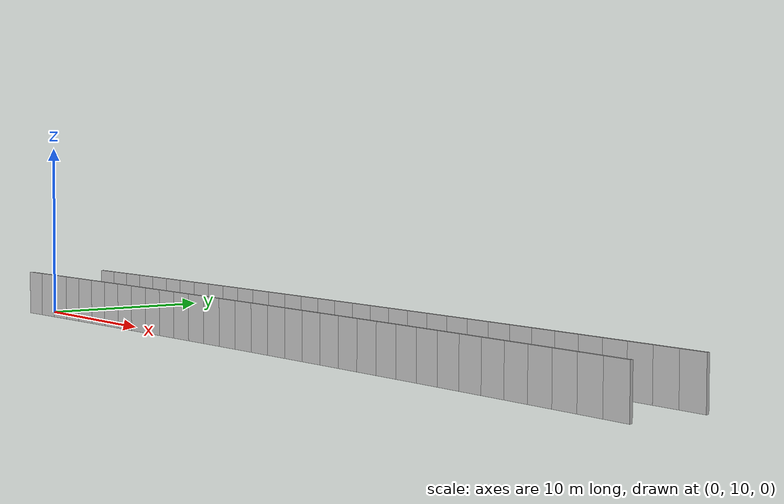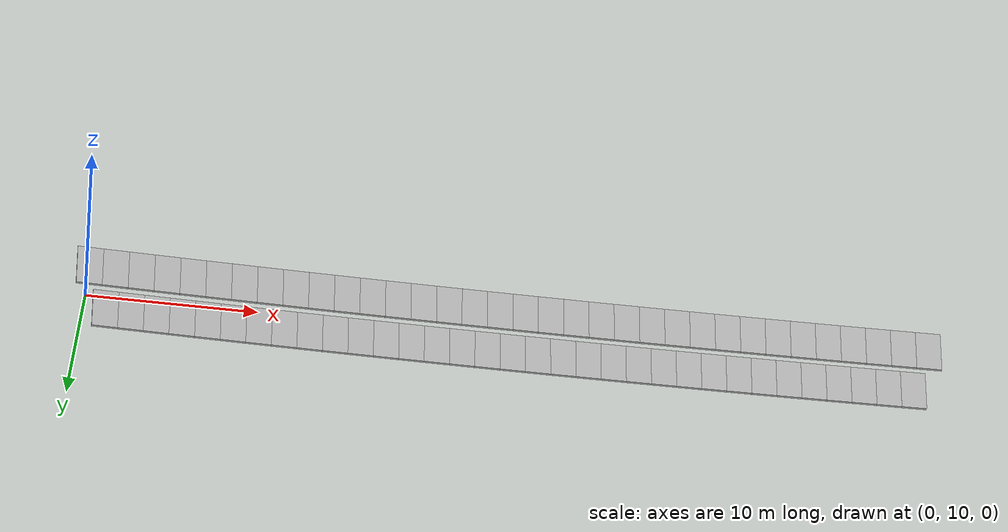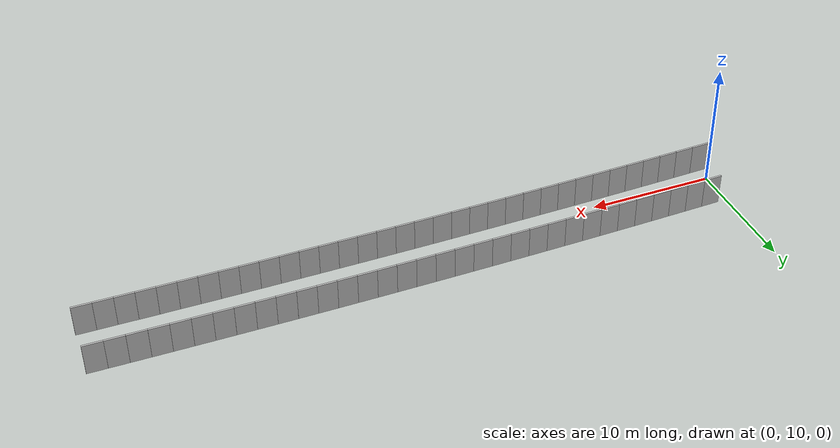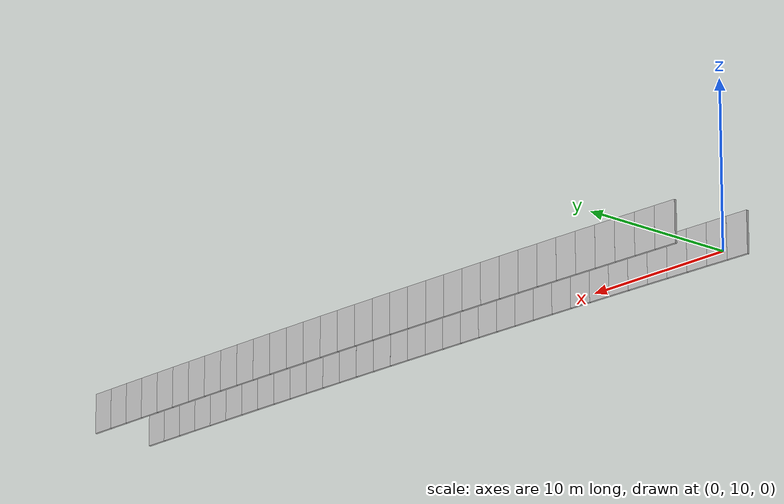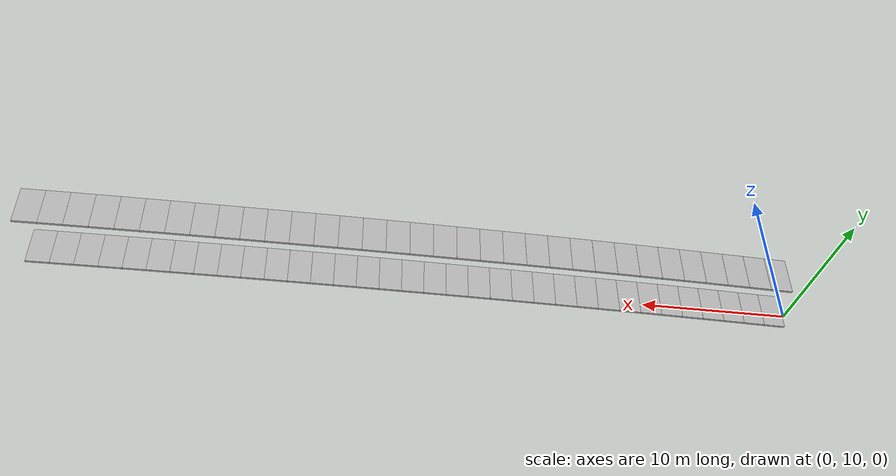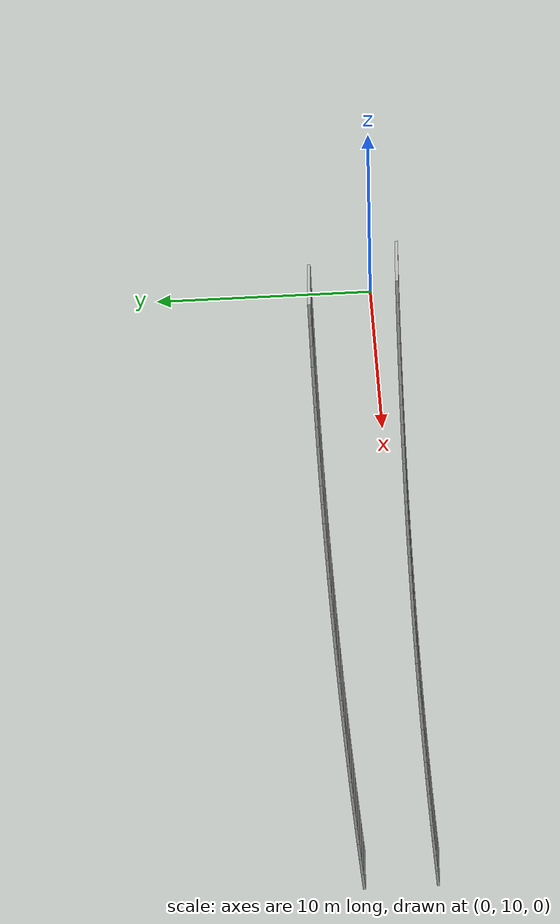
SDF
<?xml version="1.0" ?>
<sdf version="1.6">
  <model name="sps_2347">
    <pose frame="">0 0 0 0 -0 0</pose>
    <static>1</static>
    <self_collide>0</self_collide>
    <allow_auto_disable>0</allow_auto_disable>
    <link name="Wall2852">
      <kinematic>0</kinematic>
      <gravity>1</gravity>
      <self_collide>0</self_collide>
      <collision name="collision">
        <geometry>
          <box>
            <size>1.49664 0.15 2.5</size>
          </box>
        </geometry>
        <pose frame="">0 0 0 0 -0 0</pose>
      </collision>
      <visual name="visual">
        <geometry>
          <box>
            <size>1.49664 0.15 2.5</size>
          </box>
        </geometry>
        <pose frame="">0 0 0 0 -0 0</pose>
        <cast_shadows>1</cast_shadows>
        <transparency>0.0</transparency>
      </visual>
      <pose frame="">49.4662 9.1562 1.25 0 -0 3.12357</pose>
    </link>
    <link name="Wall2853">
      <kinematic>0</kinematic>
      <gravity>1</gravity>
      <self_collide>0</self_collide>
      <collision name="collision">
        <geometry>
          <box>
            <size>1.49636 0.15 2.5</size>
          </box>
        </geometry>
        <pose frame="">0 0 0 0 -0 0</pose>
      </collision>
      <visual name="visual">
        <geometry>
          <box>
            <size>1.49636 0.15 2.5</size>
          </box>
        </geometry>
        <pose frame="">0 0 0 0 -0 0</pose>
        <cast_shadows>1</cast_shadows>
        <transparency>0.0</transparency>
      </visual>
      <pose frame="">47.97 9.18208 1.25 0 -0 3.12503</pose>
    </link>
    <link name="Wall2854">
      <kinematic>0</kinematic>
      <gravity>1</gravity>
      <self_collide>0</self_collide>
      <collision name="collision">
        <geometry>
          <box>
            <size>1.49657 0.15 2.5</size>
          </box>
        </geometry>
        <pose frame="">0 0 0 0 -0 0</pose>
      </collision>
      <visual name="visual">
        <geometry>
          <box>
            <size>1.49657 0.15 2.5</size>
          </box>
        </geometry>
        <pose frame="">0 0 0 0 -0 0</pose>
        <cast_shadows>1</cast_shadows>
        <transparency>0.0</transparency>
      </visual>
      <pose frame="">46.4737 9.20567 1.25 0 -0 3.12662</pose>
    </link>
    <link name="Wall2855">
      <kinematic>0</kinematic>
      <gravity>1</gravity>
      <self_collide>0</self_collide>
      <collision name="collision">
        <geometry>
          <box>
            <size>1.49659 0.15 2.5</size>
          </box>
        </geometry>
        <pose frame="">0 0 0 0 -0 0</pose>
      </collision>
      <visual name="visual">
        <geometry>
          <box>
            <size>1.49659 0.15 2.5</size>
          </box>
        </geometry>
        <pose frame="">0 0 0 0 -0 0</pose>
        <cast_shadows>1</cast_shadows>
        <transparency>0.0</transparency>
      </visual>
      <pose frame="">44.9773 9.22679 1.25 0 -0 3.12834</pose>
    </link>
    <link name="Wall2856">
      <kinematic>0</kinematic>
      <gravity>1</gravity>
      <self_collide>0</self_collide>
      <collision name="collision">
        <geometry>
          <box>
            <size>1.4965 0.15 2.5</size>
          </box>
        </geometry>
        <pose frame="">0 0 0 0 -0 0</pose>
      </collision>
      <visual name="visual">
        <geometry>
          <box>
            <size>1.4965 0.15 2.5</size>
          </box>
        </geometry>
        <pose frame="">0 0 0 0 -0 0</pose>
        <cast_shadows>1</cast_shadows>
        <transparency>0.0</transparency>
      </visual>
      <pose frame="">43.4808 9.2455 1.25 0 -0 3.12985</pose>
    </link>
    <link name="Wall2857">
      <kinematic>0</kinematic>
      <gravity>1</gravity>
      <self_collide>0</self_collide>
      <collision name="collision">
        <geometry>
          <box>
            <size>1.49648 0.15 2.5</size>
          </box>
        </geometry>
        <pose frame="">0 0 0 0 -0 0</pose>
      </collision>
      <visual name="visual">
        <geometry>
          <box>
            <size>1.49648 0.15 2.5</size>
          </box>
        </geometry>
        <pose frame="">0 0 0 0 -0 0</pose>
        <cast_shadows>1</cast_shadows>
        <transparency>0.0</transparency>
      </visual>
      <pose frame="">41.9844 9.26189 1.25 0 -0 3.13144</pose>
    </link>
    <link name="Wall2858">
      <kinematic>0</kinematic>
      <gravity>1</gravity>
      <self_collide>0</self_collide>
      <collision name="collision">
        <geometry>
          <box>
            <size>1.49645 0.15 2.5</size>
          </box>
        </geometry>
        <pose frame="">0 0 0 0 -0 0</pose>
      </collision>
      <visual name="visual">
        <geometry>
          <box>
            <size>1.49645 0.15 2.5</size>
          </box>
        </geometry>
        <pose frame="">0 0 0 0 -0 0</pose>
        <cast_shadows>1</cast_shadows>
        <transparency>0.0</transparency>
      </visual>
      <pose frame="">40.488 9.27589 1.25 0 -0 3.13303</pose>
    </link>
    <link name="Wall2859">
      <kinematic>0</kinematic>
      <gravity>1</gravity>
      <self_collide>0</self_collide>
      <collision name="collision">
        <geometry>
          <box>
            <size>1.49643 0.15 2.5</size>
          </box>
        </geometry>
        <pose frame="">0 0 0 0 -0 0</pose>
      </collision>
      <visual name="visual">
        <geometry>
          <box>
            <size>1.49643 0.15 2.5</size>
          </box>
        </geometry>
        <pose frame="">0 0 0 0 -0 0</pose>
        <cast_shadows>1</cast_shadows>
        <transparency>0.0</transparency>
      </visual>
      <pose frame="">38.9916 9.28749 1.25 0 -0 3.13466</pose>
    </link>
    <link name="Wall2860">
      <kinematic>0</kinematic>
      <gravity>1</gravity>
      <self_collide>0</self_collide>
      <collision name="collision">
        <geometry>
          <box>
            <size>1.4966 0.15 2.5</size>
          </box>
        </geometry>
        <pose frame="">0 0 0 0 -0 0</pose>
      </collision>
      <visual name="visual">
        <geometry>
          <box>
            <size>1.4966 0.15 2.5</size>
          </box>
        </geometry>
        <pose frame="">0 0 0 0 -0 0</pose>
        <cast_shadows>1</cast_shadows>
        <transparency>0.0</transparency>
      </visual>
      <pose frame="">37.4951 9.2968 1.25 0 -0 3.13609</pose>
    </link>
    <link name="Wall2861">
      <kinematic>0</kinematic>
      <gravity>1</gravity>
      <self_collide>0</self_collide>
      <collision name="collision">
        <geometry>
          <box>
            <size>1.49641 0.15 2.5</size>
          </box>
        </geometry>
        <pose frame="">0 0 0 0 -0 0</pose>
      </collision>
      <visual name="visual">
        <geometry>
          <box>
            <size>1.49641 0.15 2.5</size>
          </box>
        </geometry>
        <pose frame="">0 0 0 0 -0 0</pose>
        <cast_shadows>1</cast_shadows>
        <transparency>0.0</transparency>
      </visual>
      <pose frame="">35.9986 9.30369 1.25 0 -0 3.13788</pose>
    </link>
    <link name="Wall2862">
      <kinematic>0</kinematic>
      <gravity>1</gravity>
      <self_collide>0</self_collide>
      <collision name="collision">
        <geometry>
          <box>
            <size>1.4964 0.15 2.5</size>
          </box>
        </geometry>
        <pose frame="">0 0 0 0 -0 0</pose>
      </collision>
      <visual name="visual">
        <geometry>
          <box>
            <size>1.4964 0.15 2.5</size>
          </box>
        </geometry>
        <pose frame="">0 0 0 0 -0 0</pose>
        <cast_shadows>1</cast_shadows>
        <transparency>0.0</transparency>
      </visual>
      <pose frame="">34.5023 9.30818 1.25 0 -0 3.13931</pose>
    </link>
    <link name="Wall2863">
      <kinematic>0</kinematic>
      <gravity>1</gravity>
      <self_collide>0</self_collide>
      <collision name="collision">
        <geometry>
          <box>
            <size>1.49658 0.15 2.5</size>
          </box>
        </geometry>
        <pose frame="">0 0 0 0 -0 0</pose>
      </collision>
      <visual name="visual">
        <geometry>
          <box>
            <size>1.49658 0.15 2.5</size>
          </box>
        </geometry>
        <pose frame="">0 0 0 0 -0 0</pose>
        <cast_shadows>1</cast_shadows>
        <transparency>0.0</transparency>
      </visual>
      <pose frame="">33.0058 9.31038 1.25 0 -0 3.14094</pose>
    </link>
    <link name="Wall2864">
      <kinematic>0</kinematic>
      <gravity>1</gravity>
      <self_collide>0</self_collide>
      <collision name="collision">
        <geometry>
          <box>
            <size>1.4964 0.15 2.5</size>
          </box>
        </geometry>
        <pose frame="">0 0 0 0 -0 0</pose>
      </collision>
      <visual name="visual">
        <geometry>
          <box>
            <size>1.4964 0.15 2.5</size>
          </box>
        </geometry>
        <pose frame="">0 0 0 0 -0 0</pose>
        <cast_shadows>1</cast_shadows>
        <transparency>0.0</transparency>
      </visual>
      <pose frame="">31.5093 9.31029 1.25 0 0 -3.14082</pose>
    </link>
    <link name="Wall2865">
      <kinematic>0</kinematic>
      <gravity>1</gravity>
      <self_collide>0</self_collide>
      <collision name="collision">
        <geometry>
          <box>
            <size>1.49665 0.15 2.5</size>
          </box>
        </geometry>
        <pose frame="">0 0 0 0 -0 0</pose>
      </collision>
      <visual name="visual">
        <geometry>
          <box>
            <size>1.49665 0.15 2.5</size>
          </box>
        </geometry>
        <pose frame="">0 0 0 0 -0 0</pose>
        <cast_shadows>1</cast_shadows>
        <transparency>0.0</transparency>
      </visual>
      <pose frame="">30.0127 9.30781 1.25 0 0 -3.13906</pose>
    </link>
    <link name="Wall2866">
      <kinematic>0</kinematic>
      <gravity>1</gravity>
      <self_collide>0</self_collide>
      <collision name="collision">
        <geometry>
          <box>
            <size>1.49659 0.15 2.5</size>
          </box>
        </geometry>
        <pose frame="">0 0 0 0 -0 0</pose>
      </collision>
      <visual name="visual">
        <geometry>
          <box>
            <size>1.49659 0.15 2.5</size>
          </box>
        </geometry>
        <pose frame="">0 0 0 0 -0 0</pose>
        <cast_shadows>1</cast_shadows>
        <transparency>0.0</transparency>
      </visual>
      <pose frame="">28.5161 9.30281 1.25 0 0 -3.13743</pose>
    </link>
    <link name="Wall2867">
      <kinematic>0</kinematic>
      <gravity>1</gravity>
      <self_collide>0</self_collide>
      <collision name="collision">
        <geometry>
          <box>
            <size>1.49642 0.15 2.5</size>
          </box>
        </geometry>
        <pose frame="">0 0 0 0 -0 0</pose>
      </collision>
      <visual name="visual">
        <geometry>
          <box>
            <size>1.49642 0.15 2.5</size>
          </box>
        </geometry>
        <pose frame="">0 0 0 0 -0 0</pose>
        <cast_shadows>1</cast_shadows>
        <transparency>0.0</transparency>
      </visual>
      <pose frame="">27.0196 9.29549 1.25 0 0 -3.13596</pose>
    </link>
    <link name="Wall2868">
      <kinematic>0</kinematic>
      <gravity>1</gravity>
      <self_collide>0</self_collide>
      <collision name="collision">
        <geometry>
          <box>
            <size>1.49644 0.15 2.5</size>
          </box>
        </geometry>
        <pose frame="">0 0 0 0 -0 0</pose>
      </collision>
      <visual name="visual">
        <geometry>
          <box>
            <size>1.49644 0.15 2.5</size>
          </box>
        </geometry>
        <pose frame="">0 0 0 0 -0 0</pose>
        <cast_shadows>1</cast_shadows>
        <transparency>0.0</transparency>
      </visual>
      <pose frame="">25.5232 9.28578 1.25 0 0 -3.13425</pose>
    </link>
    <link name="Wall2869">
      <kinematic>0</kinematic>
      <gravity>1</gravity>
      <self_collide>0</self_collide>
      <collision name="collision">
        <geometry>
          <box>
            <size>1.49664 0.15 2.5</size>
          </box>
        </geometry>
        <pose frame="">0 0 0 0 -0 0</pose>
      </collision>
      <visual name="visual">
        <geometry>
          <box>
            <size>1.49664 0.15 2.5</size>
          </box>
        </geometry>
        <pose frame="">0 0 0 0 -0 0</pose>
        <cast_shadows>1</cast_shadows>
        <transparency>0.0</transparency>
      </visual>
      <pose frame="">24.0268 9.2737 1.25 0 0 -3.13278</pose>
    </link>
    <link name="Wall2870">
      <kinematic>0</kinematic>
      <gravity>1</gravity>
      <self_collide>0</self_collide>
      <collision name="collision">
        <geometry>
          <box>
            <size>1.49648 0.15 2.5</size>
          </box>
        </geometry>
        <pose frame="">0 0 0 0 -0 0</pose>
      </collision>
      <visual name="visual">
        <geometry>
          <box>
            <size>1.49648 0.15 2.5</size>
          </box>
        </geometry>
        <pose frame="">0 0 0 0 -0 0</pose>
        <cast_shadows>1</cast_shadows>
        <transparency>0.0</transparency>
      </visual>
      <pose frame="">22.5303 9.25929 1.25 0 0 -3.13115</pose>
    </link>
    <link name="Wall2871">
      <kinematic>0</kinematic>
      <gravity>1</gravity>
      <self_collide>0</self_collide>
      <collision name="collision">
        <geometry>
          <box>
            <size>1.49651 0.15 2.5</size>
          </box>
        </geometry>
        <pose frame="">0 0 0 0 -0 0</pose>
      </collision>
      <visual name="visual">
        <geometry>
          <box>
            <size>1.49651 0.15 2.5</size>
          </box>
        </geometry>
        <pose frame="">0 0 0 0 -0 0</pose>
        <cast_shadows>1</cast_shadows>
        <transparency>0.0</transparency>
      </visual>
      <pose frame="">21.0339 9.24248 1.25 0 0 -3.12956</pose>
    </link>
    <link name="Wall2872">
      <kinematic>0</kinematic>
      <gravity>1</gravity>
      <self_collide>0</self_collide>
      <collision name="collision">
        <geometry>
          <box>
            <size>1.49635 0.15 2.5</size>
          </box>
        </geometry>
        <pose frame="">0 0 0 0 -0 0</pose>
      </collision>
      <visual name="visual">
        <geometry>
          <box>
            <size>1.49635 0.15 2.5</size>
          </box>
        </geometry>
        <pose frame="">0 0 0 0 -0 0</pose>
        <cast_shadows>1</cast_shadows>
        <transparency>0.0</transparency>
      </visual>
      <pose frame="">19.5376 9.22328 1.25 0 0 -3.12797</pose>
    </link>
    <link name="Wall2873">
      <kinematic>0</kinematic>
      <gravity>1</gravity>
      <self_collide>0</self_collide>
      <collision name="collision">
        <geometry>
          <box>
            <size>1.49657 0.15 2.5</size>
          </box>
        </geometry>
        <pose frame="">0 0 0 0 -0 0</pose>
      </collision>
      <visual name="visual">
        <geometry>
          <box>
            <size>1.49657 0.15 2.5</size>
          </box>
        </geometry>
        <pose frame="">0 0 0 0 -0 0</pose>
        <cast_shadows>1</cast_shadows>
        <transparency>0.0</transparency>
      </visual>
      <pose frame="">18.0413 9.2017 1.25 0 0 -3.12638</pose>
    </link>
    <link name="Wall2874">
      <kinematic>0</kinematic>
      <gravity>1</gravity>
      <self_collide>0</self_collide>
      <collision name="collision">
        <geometry>
          <box>
            <size>1.49661 0.15 2.5</size>
          </box>
        </geometry>
        <pose frame="">0 0 0 0 -0 0</pose>
      </collision>
      <visual name="visual">
        <geometry>
          <box>
            <size>1.49661 0.15 2.5</size>
          </box>
        </geometry>
        <pose frame="">0 0 0 0 -0 0</pose>
        <cast_shadows>1</cast_shadows>
        <transparency>0.0</transparency>
      </visual>
      <pose frame="">16.5449 9.17781 1.25 0 0 -3.12487</pose>
    </link>
    <link name="Wall2875">
      <kinematic>0</kinematic>
      <gravity>1</gravity>
      <self_collide>0</self_collide>
      <collision name="collision">
        <geometry>
          <box>
            <size>1.49647 0.15 2.5</size>
          </box>
        </geometry>
        <pose frame="">0 0 0 0 -0 0</pose>
      </collision>
      <visual name="visual">
        <geometry>
          <box>
            <size>1.49647 0.15 2.5</size>
          </box>
        </geometry>
        <pose frame="">0 0 0 0 -0 0</pose>
        <cast_shadows>1</cast_shadows>
        <transparency>0.0</transparency>
      </visual>
      <pose frame="">15.0485 9.1515 1.25 0 0 -3.12316</pose>
    </link>
    <link name="Wall2876">
      <kinematic>0</kinematic>
      <gravity>1</gravity>
      <self_collide>0</self_collide>
      <collision name="collision">
        <geometry>
          <box>
            <size>1.49645 0.15 2.5</size>
          </box>
        </geometry>
        <pose frame="">0 0 0 0 -0 0</pose>
      </collision>
      <visual name="visual">
        <geometry>
          <box>
            <size>1.49645 0.15 2.5</size>
          </box>
        </geometry>
        <pose frame="">0 0 0 0 -0 0</pose>
        <cast_shadows>1</cast_shadows>
        <transparency>0.0</transparency>
      </visual>
      <pose frame="">13.5524 9.12279 1.25 0 0 -3.12165</pose>
    </link>
    <link name="Wall2877">
      <kinematic>0</kinematic>
      <gravity>1</gravity>
      <self_collide>0</self_collide>
      <collision name="collision">
        <geometry>
          <box>
            <size>1.49656 0.15 2.5</size>
          </box>
        </geometry>
        <pose frame="">0 0 0 0 -0 0</pose>
      </collision>
      <visual name="visual">
        <geometry>
          <box>
            <size>1.49656 0.15 2.5</size>
          </box>
        </geometry>
        <pose frame="">0 0 0 0 -0 0</pose>
        <cast_shadows>1</cast_shadows>
        <transparency>0.0</transparency>
      </visual>
      <pose frame="">12.0562 9.09178 1.25 0 0 -3.1201</pose>
    </link>
    <link name="Wall2878">
      <kinematic>0</kinematic>
      <gravity>1</gravity>
      <self_collide>0</self_collide>
      <collision name="collision">
        <geometry>
          <box>
            <size>1.49643 0.15 2.5</size>
          </box>
        </geometry>
        <pose frame="">0 0 0 0 -0 0</pose>
      </collision>
      <visual name="visual">
        <geometry>
          <box>
            <size>1.49643 0.15 2.5</size>
          </box>
        </geometry>
        <pose frame="">0 0 0 0 -0 0</pose>
        <cast_shadows>1</cast_shadows>
        <transparency>0.0</transparency>
      </visual>
      <pose frame="">10.5601 9.05839 1.25 0 0 -3.11846</pose>
    </link>
    <link name="Wall2879">
      <kinematic>0</kinematic>
      <gravity>1</gravity>
      <self_collide>0</self_collide>
      <collision name="collision">
        <geometry>
          <box>
            <size>1.49643 0.15 2.5</size>
          </box>
        </geometry>
        <pose frame="">0 0 0 0 -0 0</pose>
      </collision>
      <visual name="visual">
        <geometry>
          <box>
            <size>1.49643 0.15 2.5</size>
          </box>
        </geometry>
        <pose frame="">0 0 0 0 -0 0</pose>
        <cast_shadows>1</cast_shadows>
        <transparency>0.0</transparency>
      </visual>
      <pose frame="">9.06405 9.0226 1.25 0 0 -3.11687</pose>
    </link>
    <link name="Wall2880">
      <kinematic>0</kinematic>
      <gravity>1</gravity>
      <self_collide>0</self_collide>
      <collision name="collision">
        <geometry>
          <box>
            <size>1.49655 0.15 2.5</size>
          </box>
        </geometry>
        <pose frame="">0 0 0 0 -0 0</pose>
      </collision>
      <visual name="visual">
        <geometry>
          <box>
            <size>1.49655 0.15 2.5</size>
          </box>
        </geometry>
        <pose frame="">0 0 0 0 -0 0</pose>
        <cast_shadows>1</cast_shadows>
        <transparency>0.0</transparency>
      </visual>
      <pose frame="">7.56805 8.98451 1.25 0 0 -3.11541</pose>
    </link>
    <link name="Wall2881">
      <kinematic>0</kinematic>
      <gravity>1</gravity>
      <self_collide>0</self_collide>
      <collision name="collision">
        <geometry>
          <box>
            <size>1.49637 0.15 2.5</size>
          </box>
        </geometry>
        <pose frame="">0 0 0 0 -0 0</pose>
      </collision>
      <visual name="visual">
        <geometry>
          <box>
            <size>1.49637 0.15 2.5</size>
          </box>
        </geometry>
        <pose frame="">0 0 0 0 -0 0</pose>
        <cast_shadows>1</cast_shadows>
        <transparency>0.0</transparency>
      </visual>
      <pose frame="">6.07214 8.94411 1.25 0 0 -3.11377</pose>
    </link>
    <link name="Wall2882">
      <kinematic>0</kinematic>
      <gravity>1</gravity>
      <self_collide>0</self_collide>
      <collision name="collision">
        <geometry>
          <box>
            <size>1.49644 0.15 2.5</size>
          </box>
        </geometry>
        <pose frame="">0 0 0 0 -0 0</pose>
      </collision>
      <visual name="visual">
        <geometry>
          <box>
            <size>1.49644 0.15 2.5</size>
          </box>
        </geometry>
        <pose frame="">0 0 0 0 -0 0</pose>
        <cast_shadows>1</cast_shadows>
        <transparency>0.0</transparency>
      </visual>
      <pose frame="">4.57635 8.90129 1.25 0 0 -3.11218</pose>
    </link>
    <link name="Wall2883">
      <kinematic>0</kinematic>
      <gravity>1</gravity>
      <self_collide>0</self_collide>
      <collision name="collision">
        <geometry>
          <box>
            <size>1.49651 0.15 2.5</size>
          </box>
        </geometry>
        <pose frame="">0 0 0 0 -0 0</pose>
      </collision>
      <visual name="visual">
        <geometry>
          <box>
            <size>1.49651 0.15 2.5</size>
          </box>
        </geometry>
        <pose frame="">0 0 0 0 -0 0</pose>
        <cast_shadows>1</cast_shadows>
        <transparency>0.0</transparency>
      </visual>
      <pose frame="">3.08056 8.856 1.25 0 0 -3.11047</pose>
    </link>
    <link name="Wall2884">
      <kinematic>0</kinematic>
      <gravity>1</gravity>
      <self_collide>0</self_collide>
      <collision name="collision">
        <geometry>
          <box>
            <size>1.49659 0.15 2.5</size>
          </box>
        </geometry>
        <pose frame="">0 0 0 0 -0 0</pose>
      </collision>
      <visual name="visual">
        <geometry>
          <box>
            <size>1.49659 0.15 2.5</size>
          </box>
        </geometry>
        <pose frame="">0 0 0 0 -0 0</pose>
        <cast_shadows>1</cast_shadows>
        <transparency>0.0</transparency>
      </visual>
      <pose frame="">1.58477 8.8083 1.25 0 0 -3.10896</pose>
    </link>
    <link name="Wall2885">
      <kinematic>0</kinematic>
      <gravity>1</gravity>
      <self_collide>0</self_collide>
      <collision name="collision">
        <geometry>
          <box>
            <size>1.49673 0.15 2.5</size>
          </box>
        </geometry>
        <pose frame="">0 0 0 0 -0 0</pose>
      </collision>
      <visual name="visual">
        <geometry>
          <box>
            <size>1.49673 0.15 2.5</size>
          </box>
        </geometry>
        <pose frame="">0 0 0 0 -0 0</pose>
        <cast_shadows>1</cast_shadows>
        <transparency>0.0</transparency>
      </visual>
      <pose frame="">0.0889504 8.75828 1.25 0 0 -3.10737</pose>
    </link>
    <link name="Wall5463">
      <kinematic>0</kinematic>
      <gravity>1</gravity>
      <self_collide>0</self_collide>
      <collision name="collision">
        <geometry>
          <box>
            <size>1.50305 0.15 2.5</size>
          </box>
        </geometry>
        <pose frame="">0 0 0 0 -0 0</pose>
      </collision>
      <visual name="visual">
        <geometry>
          <box>
            <size>1.50305 0.15 2.5</size>
          </box>
        </geometry>
        <pose frame="">0 0 0 0 -0 0</pose>
        <cast_shadows>1</cast_shadows>
        <transparency>0.0</transparency>
      </visual>
      <pose frame="">49.5388 13.2951 1.25 0 -0 3.12352</pose>
    </link>
    <link name="Wall5464">
      <kinematic>0</kinematic>
      <gravity>1</gravity>
      <self_collide>0</self_collide>
      <collision name="collision">
        <geometry>
          <box>
            <size>1.50301 0.15 2.5</size>
          </box>
        </geometry>
        <pose frame="">0 0 0 0 -0 0</pose>
      </collision>
      <visual name="visual">
        <geometry>
          <box>
            <size>1.50301 0.15 2.5</size>
          </box>
        </geometry>
        <pose frame="">0 0 0 0 -0 0</pose>
        <cast_shadows>1</cast_shadows>
        <transparency>0.0</transparency>
      </visual>
      <pose frame="">48.036 13.3211 1.25 0 -0 3.12506</pose>
    </link>
    <link name="Wall5465">
      <kinematic>0</kinematic>
      <gravity>1</gravity>
      <self_collide>0</self_collide>
      <collision name="collision">
        <geometry>
          <box>
            <size>1.50316 0.15 2.5</size>
          </box>
        </geometry>
        <pose frame="">0 0 0 0 -0 0</pose>
      </collision>
      <visual name="visual">
        <geometry>
          <box>
            <size>1.50316 0.15 2.5</size>
          </box>
        </geometry>
        <pose frame="">0 0 0 0 -0 0</pose>
        <cast_shadows>1</cast_shadows>
        <transparency>0.0</transparency>
      </visual>
      <pose frame="">46.5331 13.3448 1.25 0 -0 3.12657</pose>
    </link>
    <link name="Wall5466">
      <kinematic>0</kinematic>
      <gravity>1</gravity>
      <self_collide>0</self_collide>
      <collision name="collision">
        <geometry>
          <box>
            <size>1.50294 0.15 2.5</size>
          </box>
        </geometry>
        <pose frame="">0 0 0 0 -0 0</pose>
      </collision>
      <visual name="visual">
        <geometry>
          <box>
            <size>1.50294 0.15 2.5</size>
          </box>
        </geometry>
        <pose frame="">0 0 0 0 -0 0</pose>
        <cast_shadows>1</cast_shadows>
        <transparency>0.0</transparency>
      </visual>
      <pose frame="">45.0302 13.3661 1.25 0 -0 3.12827</pose>
    </link>
    <link name="Wall5467">
      <kinematic>0</kinematic>
      <gravity>1</gravity>
      <self_collide>0</self_collide>
      <collision name="collision">
        <geometry>
          <box>
            <size>1.50309 0.15 2.5</size>
          </box>
        </geometry>
        <pose frame="">0 0 0 0 -0 0</pose>
      </collision>
      <visual name="visual">
        <geometry>
          <box>
            <size>1.50309 0.15 2.5</size>
          </box>
        </geometry>
        <pose frame="">0 0 0 0 -0 0</pose>
        <cast_shadows>1</cast_shadows>
        <transparency>0.0</transparency>
      </visual>
      <pose frame="">43.5273 13.3849 1.25 0 -0 3.1299</pose>
    </link>
    <link name="Wall5468">
      <kinematic>0</kinematic>
      <gravity>1</gravity>
      <self_collide>0</self_collide>
      <collision name="collision">
        <geometry>
          <box>
            <size>1.50307 0.15 2.5</size>
          </box>
        </geometry>
        <pose frame="">0 0 0 0 -0 0</pose>
      </collision>
      <visual name="visual">
        <geometry>
          <box>
            <size>1.50307 0.15 2.5</size>
          </box>
        </geometry>
        <pose frame="">0 0 0 0 -0 0</pose>
        <cast_shadows>1</cast_shadows>
        <transparency>0.0</transparency>
      </visual>
      <pose frame="">42.0243 13.4013 1.25 0 -0 3.13148</pose>
    </link>
    <link name="Wall5469">
      <kinematic>0</kinematic>
      <gravity>1</gravity>
      <self_collide>0</self_collide>
      <collision name="collision">
        <geometry>
          <box>
            <size>1.50305 0.15 2.5</size>
          </box>
        </geometry>
        <pose frame="">0 0 0 0 -0 0</pose>
      </collision>
      <visual name="visual">
        <geometry>
          <box>
            <size>1.50305 0.15 2.5</size>
          </box>
        </geometry>
        <pose frame="">0 0 0 0 -0 0</pose>
        <cast_shadows>1</cast_shadows>
        <transparency>0.0</transparency>
      </visual>
      <pose frame="">40.5214 13.4154 1.25 0 -0 3.13294</pose>
    </link>
    <link name="Wall5470">
      <kinematic>0</kinematic>
      <gravity>1</gravity>
      <self_collide>0</self_collide>
      <collision name="collision">
        <geometry>
          <box>
            <size>1.50303 0.15 2.5</size>
          </box>
        </geometry>
        <pose frame="">0 0 0 0 -0 0</pose>
      </collision>
      <visual name="visual">
        <geometry>
          <box>
            <size>1.50303 0.15 2.5</size>
          </box>
        </geometry>
        <pose frame="">0 0 0 0 -0 0</pose>
        <cast_shadows>1</cast_shadows>
        <transparency>0.0</transparency>
      </visual>
      <pose frame="">39.0184 13.4271 1.25 0 -0 3.13469</pose>
    </link>
    <link name="Wall5471">
      <kinematic>0</kinematic>
      <gravity>1</gravity>
      <self_collide>0</self_collide>
      <collision name="collision">
        <geometry>
          <box>
            <size>1.50301 0.15 2.5</size>
          </box>
        </geometry>
        <pose frame="">0 0 0 0 -0 0</pose>
      </collision>
      <visual name="visual">
        <geometry>
          <box>
            <size>1.50301 0.15 2.5</size>
          </box>
        </geometry>
        <pose frame="">0 0 0 0 -0 0</pose>
        <cast_shadows>1</cast_shadows>
        <transparency>0.0</transparency>
      </visual>
      <pose frame="">37.5154 13.4364 1.25 0 -0 3.13611</pose>
    </link>
    <link name="Wall5472">
      <kinematic>0</kinematic>
      <gravity>1</gravity>
      <self_collide>0</self_collide>
      <collision name="collision">
        <geometry>
          <box>
            <size>1.50325 0.15 2.5</size>
          </box>
        </geometry>
        <pose frame="">0 0 0 0 -0 0</pose>
      </collision>
      <visual name="visual">
        <geometry>
          <box>
            <size>1.50325 0.15 2.5</size>
          </box>
        </geometry>
        <pose frame="">0 0 0 0 -0 0</pose>
        <cast_shadows>1</cast_shadows>
        <transparency>0.0</transparency>
      </visual>
      <pose frame="">36.0123 13.4434 1.25 0 -0 3.13774</pose>
    </link>
    <link name="Wall5473">
      <kinematic>0</kinematic>
      <gravity>1</gravity>
      <self_collide>0</self_collide>
      <collision name="collision">
        <geometry>
          <box>
            <size>1.50299 0.15 2.5</size>
          </box>
        </geometry>
        <pose frame="">0 0 0 0 -0 0</pose>
      </collision>
      <visual name="visual">
        <geometry>
          <box>
            <size>1.50299 0.15 2.5</size>
          </box>
        </geometry>
        <pose frame="">0 0 0 0 -0 0</pose>
        <cast_shadows>1</cast_shadows>
        <transparency>0.0</transparency>
      </visual>
      <pose frame="">34.5091 13.448 1.25 0 -0 3.13932</pose>
    </link>
    <link name="Wall5474">
      <kinematic>0</kinematic>
      <gravity>1</gravity>
      <self_collide>0</self_collide>
      <collision name="collision">
        <geometry>
          <box>
            <size>1.50299 0.15 2.5</size>
          </box>
        </geometry>
        <pose frame="">0 0 0 0 -0 0</pose>
      </collision>
      <visual name="visual">
        <geometry>
          <box>
            <size>1.50299 0.15 2.5</size>
          </box>
        </geometry>
        <pose frame="">0 0 0 0 -0 0</pose>
        <cast_shadows>1</cast_shadows>
        <transparency>0.0</transparency>
      </visual>
      <pose frame="">33.0062 13.4502 1.25 0 -0 3.14094</pose>
    </link>
    <link name="Wall5475">
      <kinematic>0</kinematic>
      <gravity>1</gravity>
      <self_collide>0</self_collide>
      <collision name="collision">
        <geometry>
          <box>
            <size>1.50324 0.15 2.5</size>
          </box>
        </geometry>
        <pose frame="">0 0 0 0 -0 0</pose>
      </collision>
      <visual name="visual">
        <geometry>
          <box>
            <size>1.50324 0.15 2.5</size>
          </box>
        </geometry>
        <pose frame="">0 0 0 0 -0 0</pose>
        <cast_shadows>1</cast_shadows>
        <transparency>0.0</transparency>
      </visual>
      <pose frame="">31.503 13.4499 1.25 0 0 -3.14054</pose>
    </link>
    <link name="Wall5476">
      <kinematic>0</kinematic>
      <gravity>1</gravity>
      <self_collide>0</self_collide>
      <collision name="collision">
        <geometry>
          <box>
            <size>1.503 0.15 2.5</size>
          </box>
        </geometry>
        <pose frame="">0 0 0 0 -0 0</pose>
      </collision>
      <visual name="visual">
        <geometry>
          <box>
            <size>1.503 0.15 2.5</size>
          </box>
        </geometry>
        <pose frame="">0 0 0 0 -0 0</pose>
        <cast_shadows>1</cast_shadows>
        <transparency>0.0</transparency>
      </visual>
      <pose frame="">29.9999 13.4473 1.25 0 0 -3.1392</pose>
    </link>
    <link name="Wall5477">
      <kinematic>0</kinematic>
      <gravity>1</gravity>
      <self_collide>0</self_collide>
      <collision name="collision">
        <geometry>
          <box>
            <size>1.503 0.15 2.5</size>
          </box>
        </geometry>
        <pose frame="">0 0 0 0 -0 0</pose>
      </collision>
      <visual name="visual">
        <geometry>
          <box>
            <size>1.503 0.15 2.5</size>
          </box>
        </geometry>
        <pose frame="">0 0 0 0 -0 0</pose>
        <cast_shadows>1</cast_shadows>
        <transparency>0.0</transparency>
      </visual>
      <pose frame="">28.4969 13.4424 1.25 0 0 -3.13745</pose>
    </link>
    <link name="Wall5478">
      <kinematic>0</kinematic>
      <gravity>1</gravity>
      <self_collide>0</self_collide>
      <collision name="collision">
        <geometry>
          <box>
            <size>1.5032 0.15 2.5</size>
          </box>
        </geometry>
        <pose frame="">0 0 0 0 -0 0</pose>
      </collision>
      <visual name="visual">
        <geometry>
          <box>
            <size>1.5032 0.15 2.5</size>
          </box>
        </geometry>
        <pose frame="">0 0 0 0 -0 0</pose>
        <cast_shadows>1</cast_shadows>
        <transparency>0.0</transparency>
      </visual>
      <pose frame="">26.9939 13.435 1.25 0 0 -3.13587</pose>
    </link>
    <link name="Wall5479">
      <kinematic>0</kinematic>
      <gravity>1</gravity>
      <self_collide>0</self_collide>
      <collision name="collision">
        <geometry>
          <box>
            <size>1.50303 0.15 2.5</size>
          </box>
        </geometry>
        <pose frame="">0 0 0 0 -0 0</pose>
      </collision>
      <visual name="visual">
        <geometry>
          <box>
            <size>1.50303 0.15 2.5</size>
          </box>
        </geometry>
        <pose frame="">0 0 0 0 -0 0</pose>
        <cast_shadows>1</cast_shadows>
        <transparency>0.0</transparency>
      </visual>
      <pose frame="">25.4908 13.4252 1.25 0 0 -3.13428</pose>
    </link>
    <link name="Wall5480">
      <kinematic>0</kinematic>
      <gravity>1</gravity>
      <self_collide>0</self_collide>
      <collision name="collision">
        <geometry>
          <box>
            <size>1.50311 0.15 2.5</size>
          </box>
        </geometry>
        <pose frame="">0 0 0 0 -0 0</pose>
      </collision>
      <visual name="visual">
        <geometry>
          <box>
            <size>1.50311 0.15 2.5</size>
          </box>
        </geometry>
        <pose frame="">0 0 0 0 -0 0</pose>
        <cast_shadows>1</cast_shadows>
        <transparency>0.0</transparency>
      </visual>
      <pose frame="">23.9878 13.413 1.25 0 0 -3.13266</pose>
    </link>
    <link name="Wall5481">
      <kinematic>0</kinematic>
      <gravity>1</gravity>
      <self_collide>0</self_collide>
      <collision name="collision">
        <geometry>
          <box>
            <size>1.50307 0.15 2.5</size>
          </box>
        </geometry>
        <pose frame="">0 0 0 0 -0 0</pose>
      </collision>
      <visual name="visual">
        <geometry>
          <box>
            <size>1.50307 0.15 2.5</size>
          </box>
        </geometry>
        <pose frame="">0 0 0 0 -0 0</pose>
        <cast_shadows>1</cast_shadows>
        <transparency>0.0</transparency>
      </visual>
      <pose frame="">22.4847 13.3985 1.25 0 0 -3.13124</pose>
    </link>
    <link name="Wall5482">
      <kinematic>0</kinematic>
      <gravity>1</gravity>
      <self_collide>0</self_collide>
      <collision name="collision">
        <geometry>
          <box>
            <size>1.5031 0.15 2.5</size>
          </box>
        </geometry>
        <pose frame="">0 0 0 0 -0 0</pose>
      </collision>
      <visual name="visual">
        <geometry>
          <box>
            <size>1.5031 0.15 2.5</size>
          </box>
        </geometry>
        <pose frame="">0 0 0 0 -0 0</pose>
        <cast_shadows>1</cast_shadows>
        <transparency>0.0</transparency>
      </visual>
      <pose frame="">20.9817 13.3817 1.25 0 0 -3.12961</pose>
    </link>
    <link name="Wall5483">
      <kinematic>0</kinematic>
      <gravity>1</gravity>
      <self_collide>0</self_collide>
      <collision name="collision">
        <geometry>
          <box>
            <size>1.50313 0.15 2.5</size>
          </box>
        </geometry>
        <pose frame="">0 0 0 0 -0 0</pose>
      </collision>
      <visual name="visual">
        <geometry>
          <box>
            <size>1.50313 0.15 2.5</size>
          </box>
        </geometry>
        <pose frame="">0 0 0 0 -0 0</pose>
        <cast_shadows>1</cast_shadows>
        <transparency>0.0</transparency>
      </visual>
      <pose frame="">19.4788 13.3624 1.25 0 0 -3.12787</pose>
    </link>
    <link name="Wall5484">
      <kinematic>0</kinematic>
      <gravity>1</gravity>
      <self_collide>0</self_collide>
      <collision name="collision">
        <geometry>
          <box>
            <size>1.50298 0.15 2.5</size>
          </box>
        </geometry>
        <pose frame="">0 0 0 0 -0 0</pose>
      </collision>
      <visual name="visual">
        <geometry>
          <box>
            <size>1.50298 0.15 2.5</size>
          </box>
        </geometry>
        <pose frame="">0 0 0 0 -0 0</pose>
        <cast_shadows>1</cast_shadows>
        <transparency>0.0</transparency>
      </visual>
      <pose frame="">17.9759 13.3407 1.25 0 0 -3.12644</pose>
    </link>
    <link name="Wall5485">
      <kinematic>0</kinematic>
      <gravity>1</gravity>
      <self_collide>0</self_collide>
      <collision name="collision">
        <geometry>
          <box>
            <size>1.5032 0.15 2.5</size>
          </box>
        </geometry>
        <pose frame="">0 0 0 0 -0 0</pose>
      </collision>
      <visual name="visual">
        <geometry>
          <box>
            <size>1.5032 0.15 2.5</size>
          </box>
        </geometry>
        <pose frame="">0 0 0 0 -0 0</pose>
        <cast_shadows>1</cast_shadows>
        <transparency>0.0</transparency>
      </visual>
      <pose frame="">16.473 13.3167 1.25 0 0 -3.12482</pose>
    </link>
    <link name="Wall5486">
      <kinematic>0</kinematic>
      <gravity>1</gravity>
      <self_collide>0</self_collide>
      <collision name="collision">
        <geometry>
          <box>
            <size>1.50306 0.15 2.5</size>
          </box>
        </geometry>
        <pose frame="">0 0 0 0 -0 0</pose>
      </collision>
      <visual name="visual">
        <geometry>
          <box>
            <size>1.50306 0.15 2.5</size>
          </box>
        </geometry>
        <pose frame="">0 0 0 0 -0 0</pose>
        <cast_shadows>1</cast_shadows>
        <transparency>0.0</transparency>
      </visual>
      <pose frame="">14.9701 13.2903 1.25 0 0 -3.12324</pose>
    </link>
    <link name="Wall5487">
      <kinematic>0</kinematic>
      <gravity>1</gravity>
      <self_collide>0</self_collide>
      <collision name="collision">
        <geometry>
          <box>
            <size>1.50311 0.15 2.5</size>
          </box>
        </geometry>
        <pose frame="">0 0 0 0 -0 0</pose>
      </collision>
      <visual name="visual">
        <geometry>
          <box>
            <size>1.50311 0.15 2.5</size>
          </box>
        </geometry>
        <pose frame="">0 0 0 0 -0 0</pose>
        <cast_shadows>1</cast_shadows>
        <transparency>0.0</transparency>
      </visual>
      <pose frame="">13.4672 13.2615 1.25 0 0 -3.12161</pose>
    </link>
    <link name="Wall5488">
      <kinematic>0</kinematic>
      <gravity>1</gravity>
      <self_collide>0</self_collide>
      <collision name="collision">
        <geometry>
          <box>
            <size>1.50315 0.15 2.5</size>
          </box>
        </geometry>
        <pose frame="">0 0 0 0 -0 0</pose>
      </collision>
      <visual name="visual">
        <geometry>
          <box>
            <size>1.50315 0.15 2.5</size>
          </box>
        </geometry>
        <pose frame="">0 0 0 0 -0 0</pose>
        <cast_shadows>1</cast_shadows>
        <transparency>0.0</transparency>
      </visual>
      <pose frame="">11.9644 13.2304 1.25 0 0 -3.12019</pose>
    </link>
    <link name="Wall5489">
      <kinematic>0</kinematic>
      <gravity>1</gravity>
      <self_collide>0</self_collide>
      <collision name="collision">
        <geometry>
          <box>
            <size>1.50297 0.15 2.5</size>
          </box>
        </geometry>
        <pose frame="">0 0 0 0 -0 0</pose>
      </collision>
      <visual name="visual">
        <geometry>
          <box>
            <size>1.50297 0.15 2.5</size>
          </box>
        </geometry>
        <pose frame="">0 0 0 0 -0 0</pose>
        <cast_shadows>1</cast_shadows>
        <transparency>0.0</transparency>
      </visual>
      <pose frame="">10.4618 13.1969 1.25 0 0 -3.11844</pose>
    </link>
    <link name="Wall5490">
      <kinematic>0</kinematic>
      <gravity>1</gravity>
      <self_collide>0</self_collide>
      <collision name="collision">
        <geometry>
          <box>
            <size>1.50309 0.15 2.5</size>
          </box>
        </geometry>
        <pose frame="">0 0 0 0 -0 0</pose>
      </collision>
      <visual name="visual">
        <geometry>
          <box>
            <size>1.50309 0.15 2.5</size>
          </box>
        </geometry>
        <pose frame="">0 0 0 0 -0 0</pose>
        <cast_shadows>1</cast_shadows>
        <transparency>0.0</transparency>
      </visual>
      <pose frame="">8.95916 13.1609 1.25 0 0 -3.11682</pose>
    </link>
    <link name="Wall5491">
      <kinematic>0</kinematic>
      <gravity>1</gravity>
      <self_collide>0</self_collide>
      <collision name="collision">
        <geometry>
          <box>
            <size>1.50308 0.15 2.5</size>
          </box>
        </geometry>
        <pose frame="">0 0 0 0 -0 0</pose>
      </collision>
      <visual name="visual">
        <geometry>
          <box>
            <size>1.50308 0.15 2.5</size>
          </box>
        </geometry>
        <pose frame="">0 0 0 0 -0 0</pose>
        <cast_shadows>1</cast_shadows>
        <transparency>0.0</transparency>
      </visual>
      <pose frame="">7.45657 13.1226 1.25 0 0 -3.1154</pose>
    </link>
    <link name="Wall5492">
      <kinematic>0</kinematic>
      <gravity>1</gravity>
      <self_collide>0</self_collide>
      <collision name="collision">
        <geometry>
          <box>
            <size>1.50302 0.15 2.5</size>
          </box>
        </geometry>
        <pose frame="">0 0 0 0 -0 0</pose>
      </collision>
      <visual name="visual">
        <geometry>
          <box>
            <size>1.50302 0.15 2.5</size>
          </box>
        </geometry>
        <pose frame="">0 0 0 0 -0 0</pose>
        <cast_shadows>1</cast_shadows>
        <transparency>0.0</transparency>
      </visual>
      <pose frame="">5.95406 13.082 1.25 0 0 -3.11377</pose>
    </link>
    <link name="Wall5493">
      <kinematic>0</kinematic>
      <gravity>1</gravity>
      <self_collide>0</self_collide>
      <collision name="collision">
        <geometry>
          <box>
            <size>1.50303 0.15 2.5</size>
          </box>
        </geometry>
        <pose frame="">0 0 0 0 -0 0</pose>
      </collision>
      <visual name="visual">
        <geometry>
          <box>
            <size>1.50303 0.15 2.5</size>
          </box>
        </geometry>
        <pose frame="">0 0 0 0 -0 0</pose>
        <cast_shadows>1</cast_shadows>
        <transparency>0.0</transparency>
      </visual>
      <pose frame="">4.45165 13.039 1.25 0 0 -3.11219</pose>
    </link>
    <link name="Wall5494">
      <kinematic>0</kinematic>
      <gravity>1</gravity>
      <self_collide>0</self_collide>
      <collision name="collision">
        <geometry>
          <box>
            <size>1.5031 0.15 2.5</size>
          </box>
        </geometry>
        <pose frame="">0 0 0 0 -0 0</pose>
      </collision>
      <visual name="visual">
        <geometry>
          <box>
            <size>1.5031 0.15 2.5</size>
          </box>
        </geometry>
        <pose frame="">0 0 0 0 -0 0</pose>
        <cast_shadows>1</cast_shadows>
        <transparency>0.0</transparency>
      </visual>
      <pose frame="">2.94927 12.9936 1.25 0 0 -3.11056</pose>
    </link>
    <link name="Wall5495">
      <kinematic>0</kinematic>
      <gravity>1</gravity>
      <self_collide>0</self_collide>
      <collision name="collision">
        <geometry>
          <box>
            <size>1.50324 0.15 2.5</size>
          </box>
        </geometry>
        <pose frame="">0 0 0 0 -0 0</pose>
      </collision>
      <visual name="visual">
        <geometry>
          <box>
            <size>1.50324 0.15 2.5</size>
          </box>
        </geometry>
        <pose frame="">0 0 0 0 -0 0</pose>
        <cast_shadows>1</cast_shadows>
        <transparency>0.0</transparency>
      </visual>
      <pose frame="">1.44686 12.9458 1.25 0 0 -3.10898</pose>
    </link>
  </model>
</sdf>
